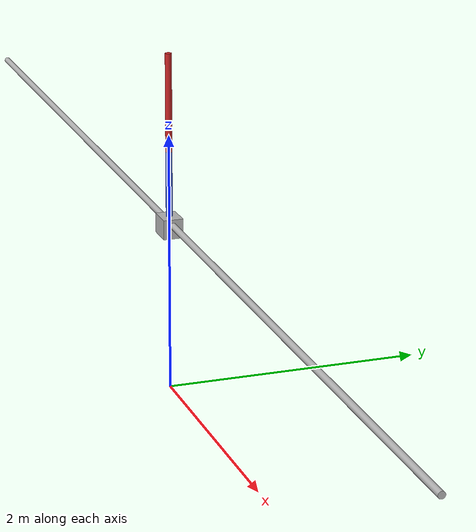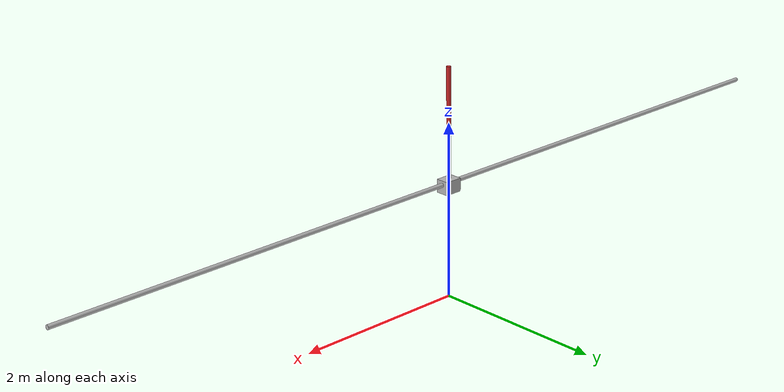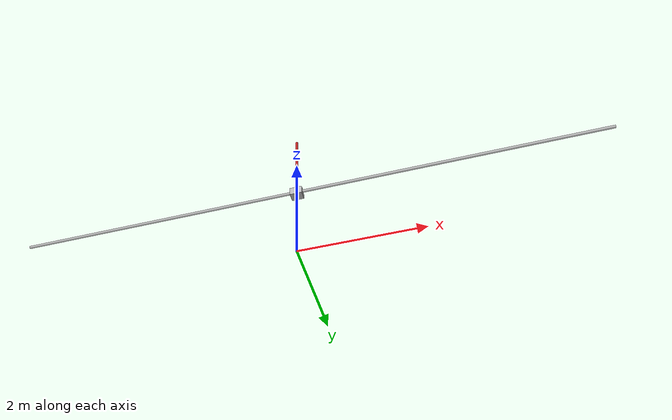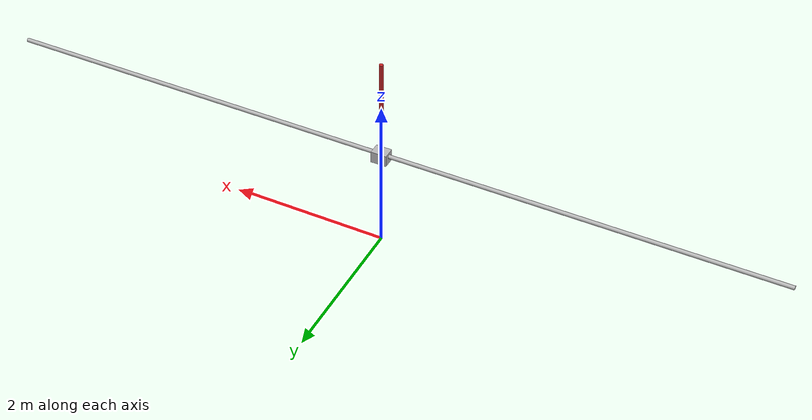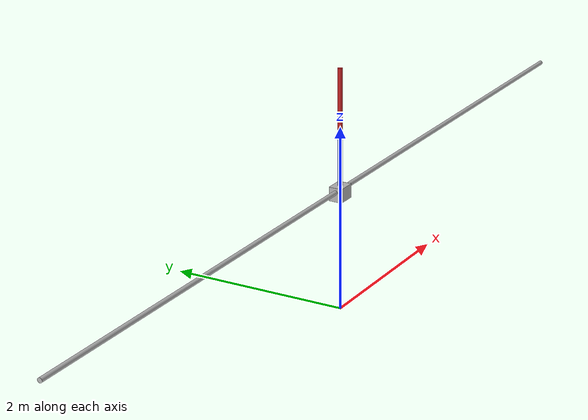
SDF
<?xml version="1.0" ?>

<sdf version="1.5">
  <model name="Double_Inverted_Pendulum">
    <pose>0.0 0.0 0.0 0.0 0.0 0.0</pose>
    <static>false</static>
    <self_collide>false</self_collide>

    <link name="base_link">
    <pose>0.0 0.0 1.375 0.0 0.0 0.0</pose>
    <inertial>
      <pose>0 0 -1.375 0 0 0</pose>
      <inertia>
        <ixx>0.1</ixx>
        <ixy>0.0</ixy>
        <ixz>0.0</ixz>
        <iyy>0.1</iyy>
        <iyz>0.0</iyz>
        <izz>0.1</izz>
      </inertia>
      <mass>0.1</mass>
    </inertial>
    <visual name="base_visual">
      <pose>0.0 0.0 -0.05 0.0 1.57079632679 0.0</pose>
      <geometry>
        <cylinder>
          <radius>0.025</radius>
          <length>10.0</length>
        </cylinder>
      </geometry>
    </visual>
    </link>

    <joint name="fixed_to_ground" type="fixed">
      <parent>world</parent>
      <child>base_link</child>
    </joint>

    <link name="cart_link">
    <pose>0.0 0.0 1.375 0.0 0.0 0.0</pose>
    <inertial>
      <pose>0.0 0.0 0.0 0.0 0.0 0.0</pose>
      <inertia>
        <ixx>0.005625000000000001</ixx>
        <ixy>0</ixy>
        <ixz>0</ixz>
        <iyy>0.0078125</iyy>
        <iyz>0</iyz>
        <izz>0.0078125</izz>
      </inertia>
      <mass>1.5</mass>
    </inertial>
      <visual name="cart_visual">
        <pose>0.0 0.0 -0.075 0.0 0.0 0.0</pose>
        <geometry>
          <box>
            <size>0.2 0.15 0.15</size>
          </box>
        </geometry>
      </visual>
    </link>

    <joint name="cart_joint" type="prismatic">
      <parent>base_link</parent>
      <child>cart_link</child>
      <axis>
        <xyz>1 0 0</xyz>
        <limit>
          <lower>-10</lower>
          <upper>10</upper>
        </limit>
      </axis>
    </joint>

    <link name="firstpendulum_link">
    <pose>0 0 1.375 0 0 0</pose>
    <inertial>
      <pose>0 0 0.25 0 0 0</pose>
      <inertia>
        <ixx>0.010416666666666666</ixx>
        <ixy>0</ixy>
        <ixz>0</ixz>
        <iyy>0.010416666666666666</iyy>
        <iyz>0</iyz>
        <izz>0.00015625000000000003</izz>
      </inertia>
      <mass>0.5</mass>
    </inertial>
      <visual name="firstpendulum_visual">
        <pose>0 0 0.25 0 0 0</pose>
        <geometry>
          <cylinder>
            <radius>0.025</radius>
            <length>0.5</length>
          </cylinder>
        </geometry>
        <material>
          <script>
            <uri>file://media/materials/scripts/gazebo.material</uri>
            <name>Gazebo/Blue</name>
          </script>
        </material>
      </visual>
    </link>

    <joint name="firstpendulum_joint" type="revolute">
    <parent>cart_link</parent>
    <child>firstpendulum_link</child>
    <axis>
      <xyz>0 1 0</xyz>
      <dynamics>
        <damping>0.005</damping>
      </dynamics>
    </axis>
    </joint>

    <link name="secondpendulum_link">
    <pose>0 0 1.875 0 0 0</pose>
    <inertial>
      <pose>0 0 0.375 0 0 0</pose>
      <inertia>
        <ixx>0.03515625</ixx>
        <ixy>0</ixy>
        <ixz>0</ixz>
        <iyy>0.03515625</iyy>
        <iyz>0</iyz>
        <izz>0.00015625000000000003</izz>
      </inertia>
      <mass>0.75</mass>
    </inertial>
      <visual name="secondpendulum_visual">
        <pose>0 0 0.375 0 0 0</pose>
        <geometry>
          <cylinder>
            <radius>0.025</radius>
            <length>0.75</length>
          </cylinder>
        </geometry>
        <material>
          <script>
            <uri>file://media/materials/scripts/gazebo.material</uri>
            <name>Gazebo/Red</name>
          </script>
        </material>
      </visual>
    </link>

    <joint name="secondpendulum_joint" type="revolute">
    <parent>firstpendulum_link</parent>
    <child>secondpendulum_link</child>
    <axis>
      <xyz>0 1 0</xyz>
      <dynamics>
        <damping>0.005</damping>
      </dynamics>
    </axis>
    </joint>

    <plugin name="pendulum_stabilization" filename="libpendulum_stabilization.so">
    <cart_joint>cart_joint</cart_joint>
    <first_pendulum_joint>firstpendulum_joint</first_pendulum_joint>
    <second_pendulum_joint>secondpendulum_joint</second_pendulum_joint>
    </plugin>

  </model>
</sdf>
